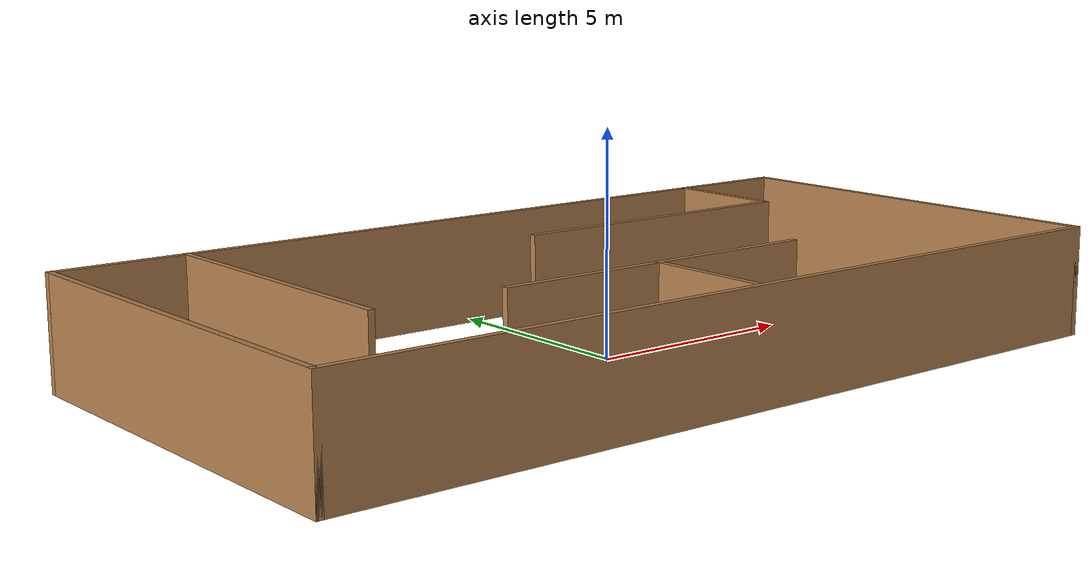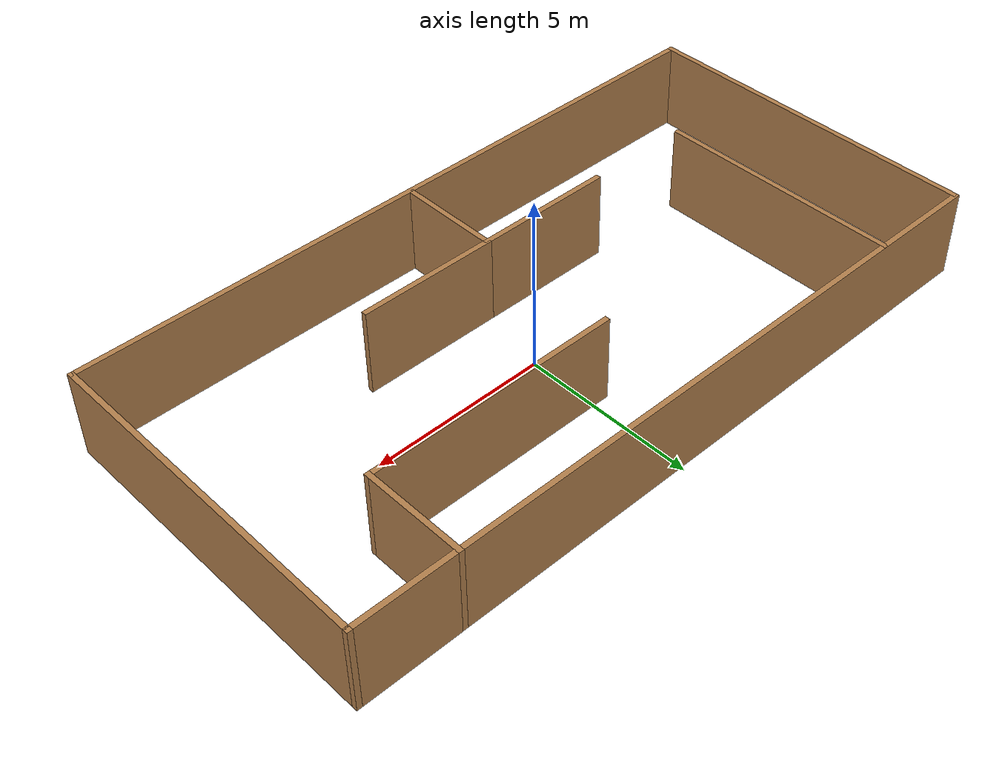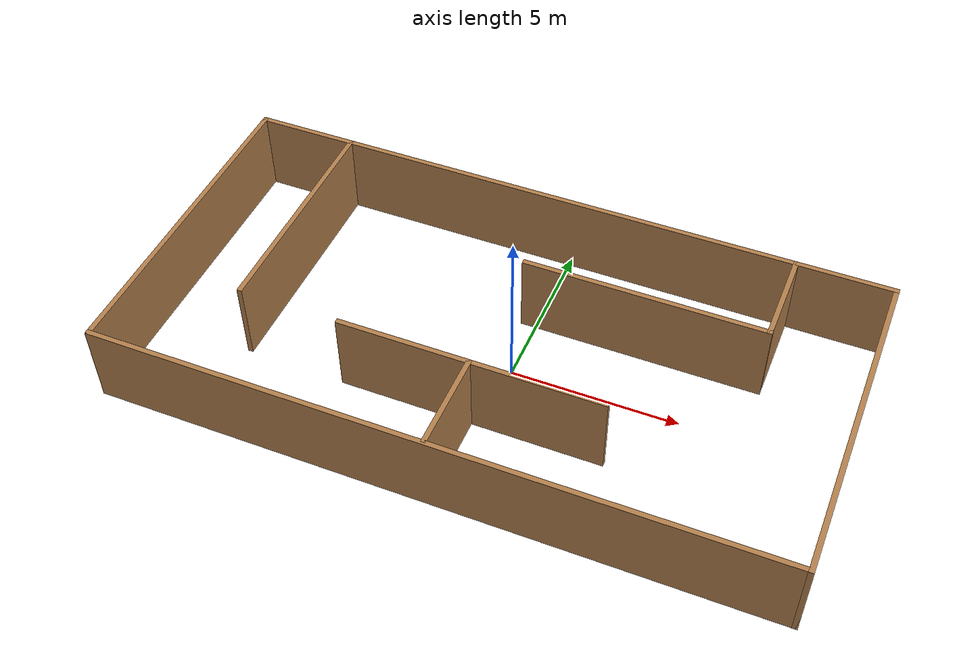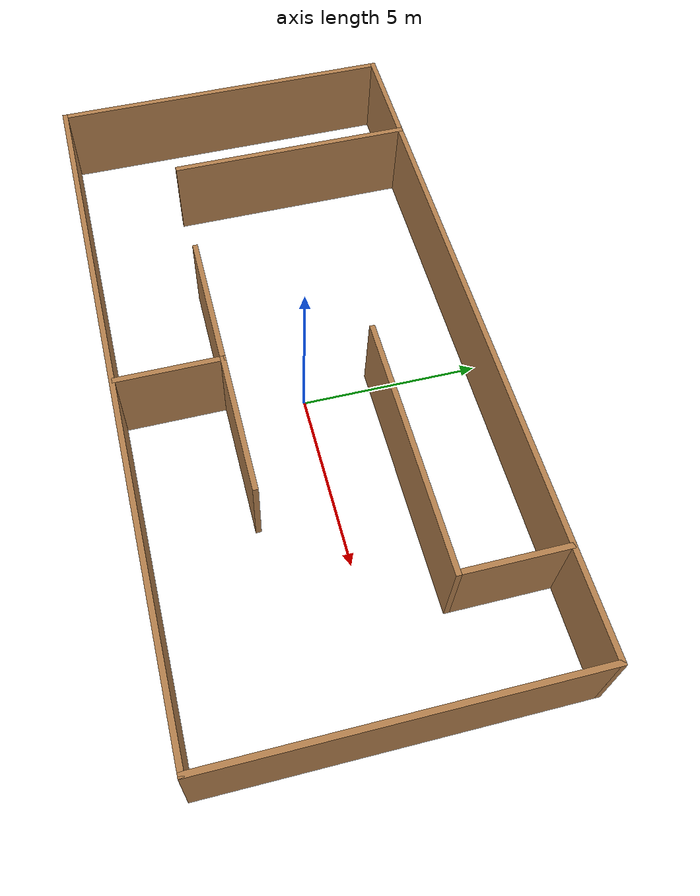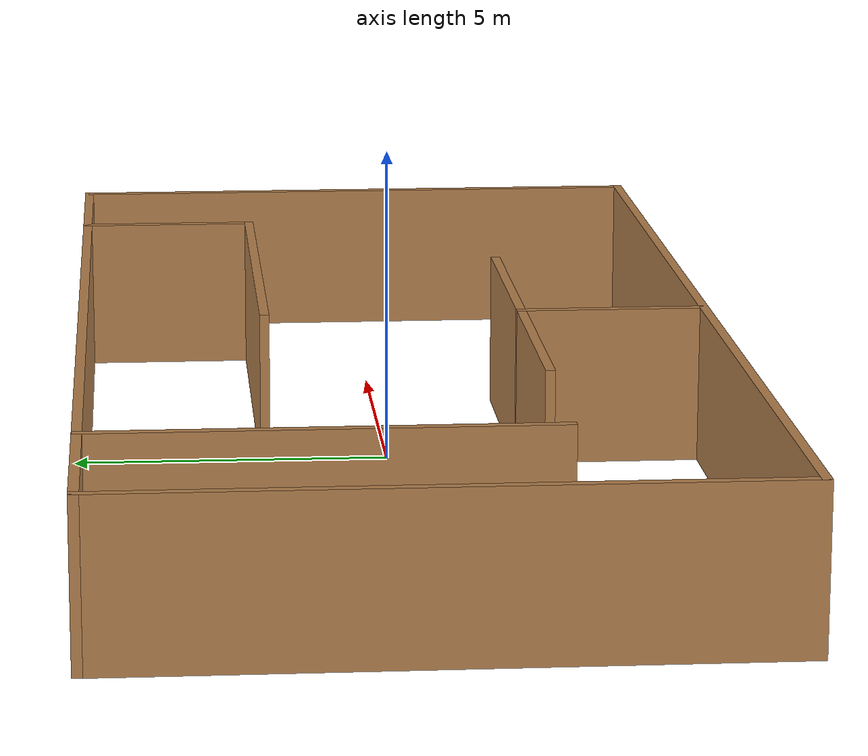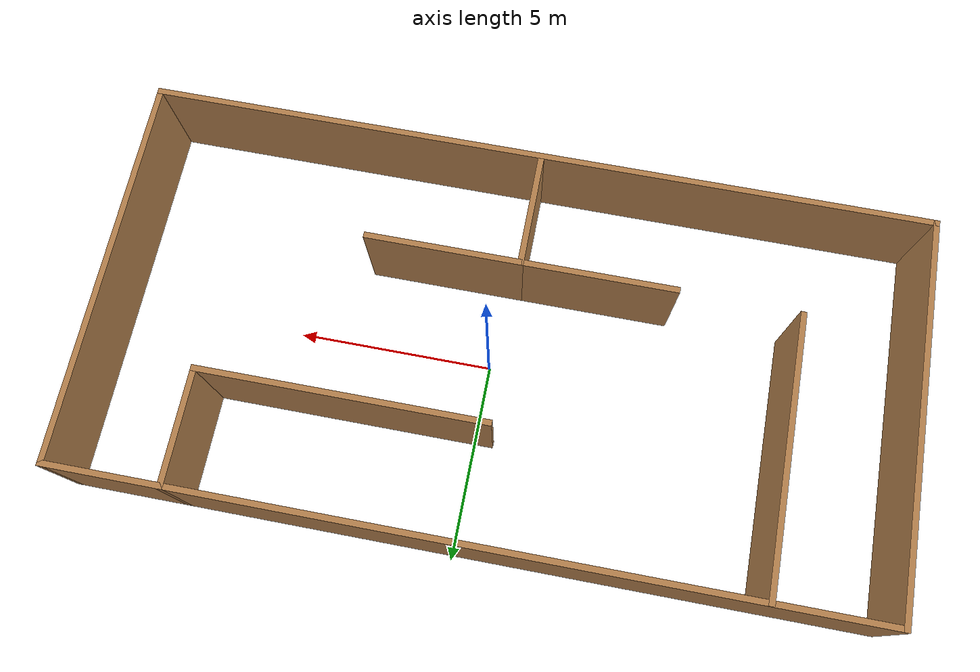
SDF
<?xml version='1.0'?>
<sdf version='1.6'>
  <model name='apartment'>
    <pose frame=''>-0.372332 -0.104326 0 0 -0 0</pose>
    <link name='Wall_0'>
      <collision name='Wall_0_Collision'>
        <geometry>
          <box>
            <size>20 0.15 2.5</size>
          </box>
        </geometry>
        <pose frame=''>0 0 1.25 0 -0 0</pose>
      </collision>
      <visual name='Wall_0_Visual'>
        <pose frame=''>0 0 1.25 0 -0 0</pose>
        <geometry>
          <box>
            <size>20 0.15 2.5</size>
          </box>
        </geometry>
        <material>
          <script>
            <uri>file://media/materials/scripts/gazebo.material</uri>
            <name>Gazebo/Wood</name>
          </script>
          <ambient>1 1 1 1</ambient>
        </material>
      </visual>
      <pose frame=''>0 -4.925 0 0 -0 0</pose>
    </link>
    <link name='Wall_1'>
      <collision name='Wall_1_Collision'>
        <geometry>
          <box>
            <size>10 0.15 2.5</size>
          </box>
        </geometry>
        <pose frame=''>0 0 1.25 0 -0 0</pose>
      </collision>
      <visual name='Wall_1_Visual'>
        <pose frame=''>0 0 1.25 0 -0 0</pose>
        <geometry>
          <box>
            <size>10 0.15 2.5</size>
          </box>
        </geometry>
        <material>
          <script>
            <uri>file://media/materials/scripts/gazebo.material</uri>
            <name>Gazebo/Wood</name>
          </script>
          <ambient>1 1 1 1</ambient>
        </material>
      </visual>
      <pose frame=''>9.925 0 0 0 -0 1.5708</pose>
    </link>
    <link name='Wall_11'>
      <collision name='Wall_11_Collision'>
        <geometry>
          <box>
            <size>3 0.15 2.5</size>
          </box>
        </geometry>
        <pose frame=''>0 0 1.25 0 -0 0</pose>
      </collision>
      <visual name='Wall_11_Visual'>
        <pose frame=''>0 0 1.25 0 -0 0</pose>
        <geometry>
          <box>
            <size>3 0.15 2.5</size>
          </box>
        </geometry>
        <material>
          <script>
            <uri>file://media/materials/scripts/gazebo.material</uri>
            <name>Gazebo/Wood</name>
          </script>
          <ambient>1 1 1 1</ambient>
        </material>
      </visual>
      <pose frame=''>-0.023615 -3.42368 0 0 -0 1.5708</pose>
    </link>
    <link name='Wall_12'>
      <collision name='Wall_12_Collision'>
        <geometry>
          <box>
            <size>4 0.15 2.5</size>
          </box>
        </geometry>
        <pose frame=''>0 0 1.25 0 -0 0</pose>
      </collision>
      <visual name='Wall_12_Visual'>
        <pose frame=''>0 0 1.25 0 -0 0</pose>
        <geometry>
          <box>
            <size>4 0.15 2.5</size>
          </box>
        </geometry>
        <material>
          <script>
            <uri>file://media/materials/scripts/gazebo.material</uri>
            <name>Gazebo/Wood</name>
          </script>
          <ambient>1 1 1 1</ambient>
        </material>
      </visual>
      <pose frame=''>-1.94862 -1.99868 0 0 -0 3.14159</pose>
    </link>
    <link name='Wall_14'>
      <collision name='Wall_14_Collision'>
        <geometry>
          <box>
            <size>4 0.15 2.5</size>
          </box>
        </geometry>
        <pose frame=''>0 0 1.25 0 -0 0</pose>
      </collision>
      <visual name='Wall_14_Visual'>
        <pose frame=''>0 0 1.25 0 -0 0</pose>
        <geometry>
          <box>
            <size>4 0.15 2.5</size>
          </box>
        </geometry>
        <material>
          <script>
            <uri>file://media/materials/scripts/gazebo.material</uri>
            <name>Gazebo/Wood</name>
          </script>
          <ambient>1 1 1 1</ambient>
        </material>
      </visual>
      <pose frame=''>1.90138 -1.99868 0 0 -0 0</pose>
    </link>
    <link name='Wall_2'>
      <collision name='Wall_2_Collision'>
        <geometry>
          <box>
            <size>20 0.15 2.5</size>
          </box>
        </geometry>
        <pose frame=''>0 0 1.25 0 -0 0</pose>
      </collision>
      <visual name='Wall_2_Visual'>
        <pose frame=''>0 0 1.25 0 -0 0</pose>
        <geometry>
          <box>
            <size>20 0.15 2.5</size>
          </box>
        </geometry>
        <material>
          <script>
            <uri>file://media/materials/scripts/gazebo.material</uri>
            <name>Gazebo/Wood</name>
          </script>
          <ambient>1 1 1 1</ambient>
        </material>
      </visual>
      <pose frame=''>0 4.925 0 0 -0 3.14159</pose>
    </link>
    <link name='Wall_20'>
      <collision name='Wall_20_Collision'>
        <geometry>
          <box>
            <size>7 0.15 2.5</size>
          </box>
        </geometry>
        <pose frame=''>0 0 1.25 0 -0 0</pose>
      </collision>
      <visual name='Wall_20_Visual'>
        <pose frame=''>0 0 1.25 0 -0 0</pose>
        <geometry>
          <box>
            <size>7 0.15 2.5</size>
          </box>
        </geometry>
        <material>
          <script>
            <uri>file://media/materials/scripts/gazebo.material</uri>
            <name>Gazebo/Wood</name>
          </script>
          <ambient>1 1 1 1</ambient>
        </material>
      </visual>
      <pose frame=''>-6.94656 1.49076 0 0 0 -1.5708</pose>
    </link>
    <link name='Wall_27'>
      <collision name='Wall_27_Collision'>
        <geometry>
          <box>
            <size>3 0.15 2.5</size>
          </box>
        </geometry>
        <pose frame=''>0 0 1.25 0 -0 0</pose>
      </collision>
      <visual name='Wall_27_Visual'>
        <pose frame=''>0 0 1.25 0 -0 0</pose>
        <geometry>
          <box>
            <size>3 0.15 2.5</size>
          </box>
        </geometry>
        <material>
          <script>
            <uri>file://media/materials/scripts/gazebo.material</uri>
            <name>Gazebo/Wood</name>
          </script>
          <ambient>1 1 1 1</ambient>
        </material>
      </visual>
      <pose frame=''>7.075 3.5 0 0 0 -1.5708</pose>
    </link>
    <link name='Wall_28'>
      <collision name='Wall_28_Collision'>
        <geometry>
          <box>
            <size>7.25 0.15 2.5</size>
          </box>
        </geometry>
        <pose frame=''>0 0 1.25 0 -0 0</pose>
      </collision>
      <visual name='Wall_28_Visual'>
        <pose frame=''>0 0 1.25 0 -0 0</pose>
        <geometry>
          <box>
            <size>7.25 0.15 2.5</size>
          </box>
        </geometry>
        <material>
          <script>
            <uri>file://media/materials/scripts/gazebo.material</uri>
            <name>Gazebo/Wood</name>
          </script>
          <ambient>1 1 1 1</ambient>
        </material>
      </visual>
      <pose frame=''>3.525 2.075 0 0 -0 3.14159</pose>
    </link>
    <link name='Wall_3'>
      <collision name='Wall_3_Collision'>
        <geometry>
          <box>
            <size>10 0.15 2.5</size>
          </box>
        </geometry>
        <pose frame=''>0 0 1.25 0 -0 0</pose>
      </collision>
      <visual name='Wall_3_Visual'>
        <pose frame=''>0 0 1.25 0 -0 0</pose>
        <geometry>
          <box>
            <size>10 0.15 2.5</size>
          </box>
        </geometry>
        <material>
          <script>
            <uri>file://media/materials/scripts/gazebo.material</uri>
            <name>Gazebo/Wood</name>
          </script>
          <ambient>1 1 1 1</ambient>
        </material>
      </visual>
      <pose frame=''>-9.925 0 0 0 0 -1.5708</pose>
    </link>
    <static>1</static>
  </model>
</sdf>
